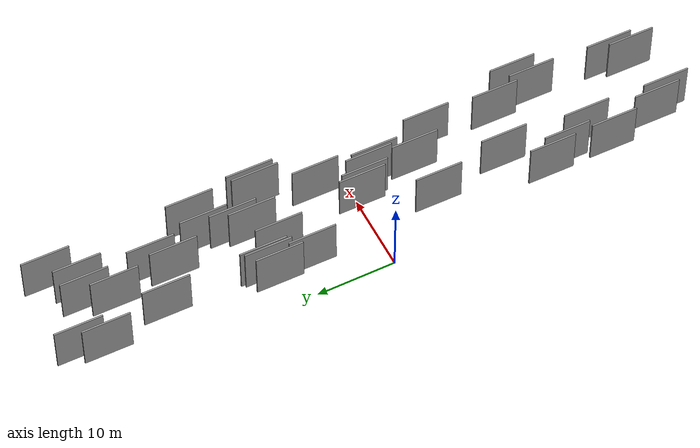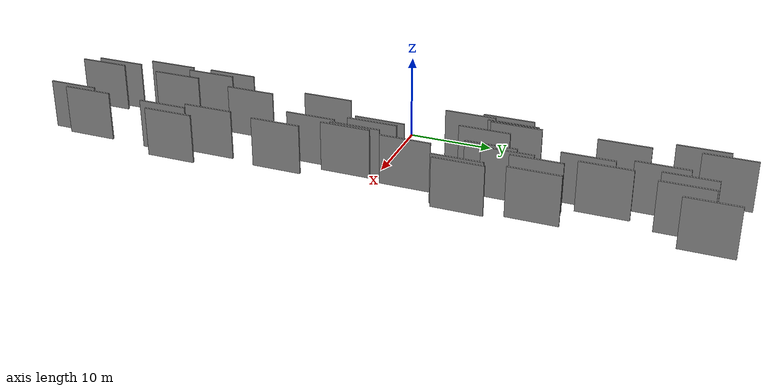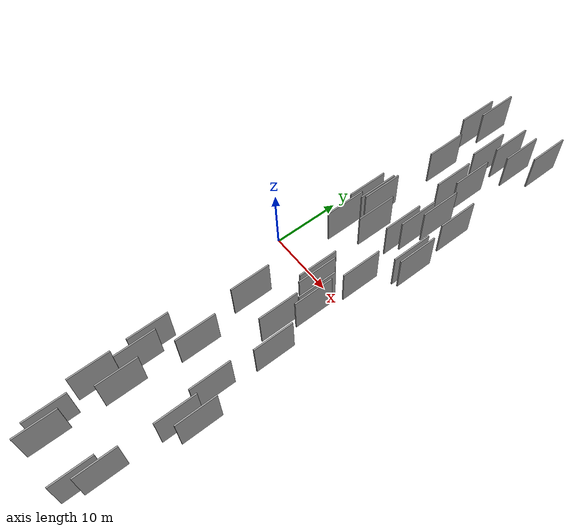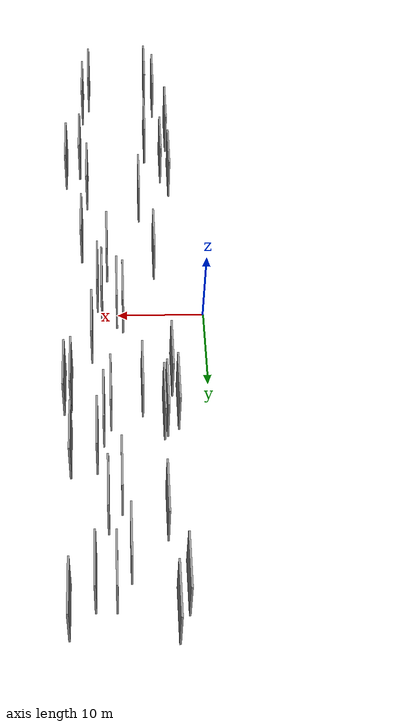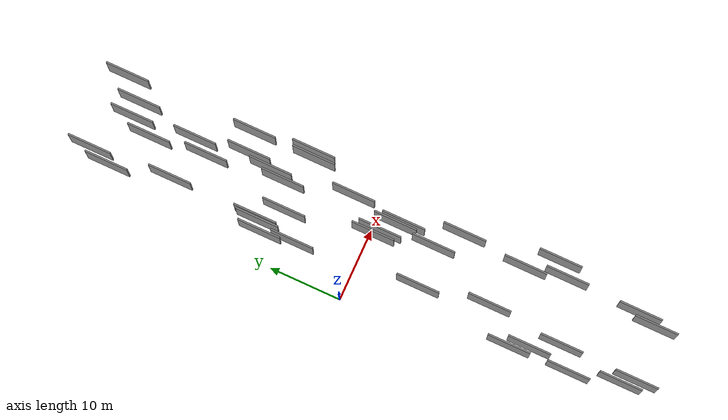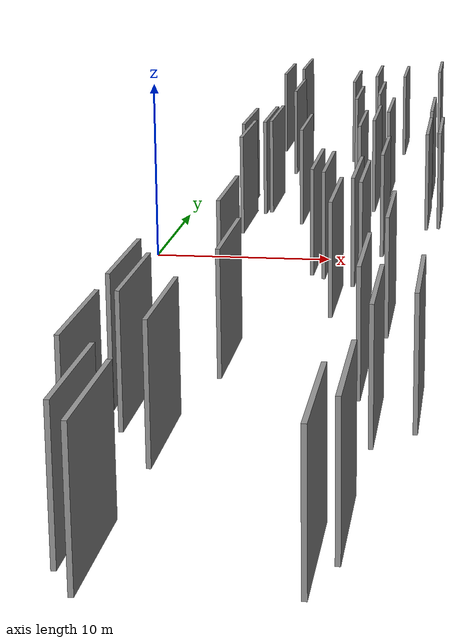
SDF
<sdf version="1.6">
 <world name="default">
  <scene>
   <sky><clouds><speed>12</speed></clouds></sky>
   <ambient>0.4 0.4 0.4 1</ambient>
   <background>0.7 0.7 0.7 1</background>
   <shadows>1</shadows>
  </scene>
  <gravity>0 0 -9.8066</gravity>
  <magnetic_field>6e-06 2.3e-05 -4.2e-05</magnetic_field>
  <physics default="0" name="default_physics" type="ode">
   <ode>
    <solver>
     <type>quick</type>
     <iters>10</iters>
     <sor>1.0</sor>
     <use_dynamic_moi_rescaling>0</use_dynamic_moi_rescaling>
    </solver>
    <constraints>
     <cfm>0</cfm>
     <erp>0.2</erp>
     <contact_max_correcting_vel>100</contact_max_correcting_vel>
     <contact_surface_layer>0.001</contact_surface_layer>
    </constraints>
   </ode>
   <max_step_size>0.004</max_step_size>
   <real_time_factor>1</real_time_factor>
   <real_time_update_rate>250</real_time_update_rate>
  </physics>
  <light name="sun" type="directional">
   <pose>0 0 10 0 0 0</pose>
   <diffuse>0.8 0.8 0.8 1</diffuse>
   <specular>0.2 0.2 0.2 1</specular>
   <attenuation>
    <range>1000</range>
    <constant>0.9</constant>
    <linear>0.01</linear>
    <quadratic>0.001</quadratic>
   </attenuation>
   <direction>-0.5 0.1 -0.9</direction>
  </light>
  <model name="grey_wall_1">
   <static>1</static>
   <pose>4.3245 -24.9638 0.0 0.000000 0.000000 1.570796</pose>
   <link name="link">
    <pose>0 0 3.00 0 0 0</pose>
    <collision name="collision"><geometry><box><size>6.00 0.2 6.00</size></box></geometry></collision>
    <visual name="visual">
     <cast_shadows>0</cast_shadows>
     <geometry><box><size>6.00 0.2 6.00</size></box></geometry>
     <material>
      <script>
       <uri>model://grey_wall/materials/scripts</uri>
       <uri>model://grey_wall/materials/textures</uri>
       <name>vrc/grey_wall</name>
      </script>
     </material>
    </visual>
   </link>
  </model>
  <model name="grey_wall_2">
   <static>1</static>
   <pose>12.3497 18.5937 0.0 0.000000 0.000000 1.570796</pose>
   <link name="link">
    <pose>0 0 3.00 0 0 0</pose>
    <collision name="collision"><geometry><box><size>6.00 0.2 6.00</size></box></geometry></collision>
    <visual name="visual">
     <cast_shadows>0</cast_shadows>
     <geometry><box><size>6.00 0.2 6.00</size></box></geometry>
     <material>
      <script>
       <uri>model://grey_wall/materials/scripts</uri>
       <uri>model://grey_wall/materials/textures</uri>
       <name>vrc/grey_wall</name>
      </script>
     </material>
    </visual>
   </link>
  </model>
  <model name="grey_wall_3">
   <static>1</static>
   <pose>11.8341 -2.5435 0.0 0.000000 0.000000 1.570796</pose>
   <link name="link">
    <pose>0 0 3.00 0 0 0</pose>
    <collision name="collision"><geometry><box><size>6.00 0.2 6.00</size></box></geometry></collision>
    <visual name="visual">
     <cast_shadows>0</cast_shadows>
     <geometry><box><size>6.00 0.2 6.00</size></box></geometry>
     <material>
      <script>
       <uri>model://grey_wall/materials/scripts</uri>
       <uri>model://grey_wall/materials/textures</uri>
       <name>vrc/grey_wall</name>
      </script>
     </material>
    </visual>
   </link>
  </model>
  <model name="grey_wall_4">
   <static>1</static>
   <pose>7.4011 11.3173 0.0 0.000000 0.000000 1.570796</pose>
   <link name="link">
    <pose>0 0 3.00 0 0 0</pose>
    <collision name="collision"><geometry><box><size>6.00 0.2 6.00</size></box></geometry></collision>
    <visual name="visual">
     <cast_shadows>0</cast_shadows>
     <geometry><box><size>6.00 0.2 6.00</size></box></geometry>
     <material>
      <script>
       <uri>model://grey_wall/materials/scripts</uri>
       <uri>model://grey_wall/materials/textures</uri>
       <name>vrc/grey_wall</name>
      </script>
     </material>
    </visual>
   </link>
  </model>
  <model name="grey_wall_5">
   <static>1</static>
   <pose>10.8684 13.0981 0.0 0.000000 0.000000 1.570796</pose>
   <link name="link">
    <pose>0 0 3.00 0 0 0</pose>
    <collision name="collision"><geometry><box><size>6.00 0.2 6.00</size></box></geometry></collision>
    <visual name="visual">
     <cast_shadows>0</cast_shadows>
     <geometry><box><size>6.00 0.2 6.00</size></box></geometry>
     <material>
      <script>
       <uri>model://grey_wall/materials/scripts</uri>
       <uri>model://grey_wall/materials/textures</uri>
       <name>vrc/grey_wall</name>
      </script>
     </material>
    </visual>
   </link>
  </model>
  <model name="grey_wall_6">
   <static>1</static>
   <pose>4.7483 13.9222 0.0 0.000000 0.000000 1.570796</pose>
   <link name="link">
    <pose>0 0 3.00 0 0 0</pose>
    <collision name="collision"><geometry><box><size>6.00 0.2 6.00</size></box></geometry></collision>
    <visual name="visual">
     <cast_shadows>0</cast_shadows>
     <geometry><box><size>6.00 0.2 6.00</size></box></geometry>
     <material>
      <script>
       <uri>model://grey_wall/materials/scripts</uri>
       <uri>model://grey_wall/materials/textures</uri>
       <name>vrc/grey_wall</name>
      </script>
     </material>
    </visual>
   </link>
  </model>
  <model name="grey_wall_7">
   <static>1</static>
   <pose>12.5244 34.4096 0.0 0.000000 0.000000 1.570796</pose>
   <link name="link">
    <pose>0 0 3.00 0 0 0</pose>
    <collision name="collision"><geometry><box><size>6.00 0.2 6.00</size></box></geometry></collision>
    <visual name="visual">
     <cast_shadows>0</cast_shadows>
     <geometry><box><size>6.00 0.2 6.00</size></box></geometry>
     <material>
      <script>
       <uri>model://grey_wall/materials/scripts</uri>
       <uri>model://grey_wall/materials/textures</uri>
       <name>vrc/grey_wall</name>
      </script>
     </material>
    </visual>
   </link>
  </model>
  <model name="grey_wall_8">
   <static>1</static>
   <pose>14.6035 -25.7520 0.0 0.000000 0.000000 1.570796</pose>
   <link name="link">
    <pose>0 0 3.00 0 0 0</pose>
    <collision name="collision"><geometry><box><size>6.00 0.2 6.00</size></box></geometry></collision>
    <visual name="visual">
     <cast_shadows>0</cast_shadows>
     <geometry><box><size>6.00 0.2 6.00</size></box></geometry>
     <material>
      <script>
       <uri>model://grey_wall/materials/scripts</uri>
       <uri>model://grey_wall/materials/textures</uri>
       <name>vrc/grey_wall</name>
      </script>
     </material>
    </visual>
   </link>
  </model>
  <model name="grey_wall_9">
   <static>1</static>
   <pose>16.2894 -24.0302 0.0 0.000000 0.000000 1.570796</pose>
   <link name="link">
    <pose>0 0 3.00 0 0 0</pose>
    <collision name="collision"><geometry><box><size>6.00 0.2 6.00</size></box></geometry></collision>
    <visual name="visual">
     <cast_shadows>0</cast_shadows>
     <geometry><box><size>6.00 0.2 6.00</size></box></geometry>
     <material>
      <script>
       <uri>model://grey_wall/materials/scripts</uri>
       <uri>model://grey_wall/materials/textures</uri>
       <name>vrc/grey_wall</name>
      </script>
     </material>
    </visual>
   </link>
  </model>
  <model name="grey_wall_10">
   <static>1</static>
   <pose>6.0475 -39.3182 0.0 0.000000 0.000000 1.570796</pose>
   <link name="link">
    <pose>0 0 3.00 0 0 0</pose>
    <collision name="collision"><geometry><box><size>6.00 0.2 6.00</size></box></geometry></collision>
    <visual name="visual">
     <cast_shadows>0</cast_shadows>
     <geometry><box><size>6.00 0.2 6.00</size></box></geometry>
     <material>
      <script>
       <uri>model://grey_wall/materials/scripts</uri>
       <uri>model://grey_wall/materials/textures</uri>
       <name>vrc/grey_wall</name>
      </script>
     </material>
    </visual>
   </link>
  </model>
  <model name="grey_wall_11">
   <static>1</static>
   <pose>7.2088 -18.0423 0.0 0.000000 0.000000 1.570796</pose>
   <link name="link">
    <pose>0 0 3.00 0 0 0</pose>
    <collision name="collision"><geometry><box><size>6.00 0.2 6.00</size></box></geometry></collision>
    <visual name="visual">
     <cast_shadows>0</cast_shadows>
     <geometry><box><size>6.00 0.2 6.00</size></box></geometry>
     <material>
      <script>
       <uri>model://grey_wall/materials/scripts</uri>
       <uri>model://grey_wall/materials/textures</uri>
       <name>vrc/grey_wall</name>
      </script>
     </material>
    </visual>
   </link>
  </model>
  <model name="grey_wall_12">
   <static>1</static>
   <pose>11.2103 -8.2758 0.0 0.000000 0.000000 1.570796</pose>
   <link name="link">
    <pose>0 0 3.00 0 0 0</pose>
    <collision name="collision"><geometry><box><size>6.00 0.2 6.00</size></box></geometry></collision>
    <visual name="visual">
     <cast_shadows>0</cast_shadows>
     <geometry><box><size>6.00 0.2 6.00</size></box></geometry>
     <material>
      <script>
       <uri>model://grey_wall/materials/scripts</uri>
       <uri>model://grey_wall/materials/textures</uri>
       <name>vrc/grey_wall</name>
      </script>
     </material>
    </visual>
   </link>
  </model>
  <model name="grey_wall_13">
   <static>1</static>
   <pose>5.6096 -8.5747 0.0 0.000000 0.000000 1.570796</pose>
   <link name="link">
    <pose>0 0 3.00 0 0 0</pose>
    <collision name="collision"><geometry><box><size>6.00 0.2 6.00</size></box></geometry></collision>
    <visual name="visual">
     <cast_shadows>0</cast_shadows>
     <geometry><box><size>6.00 0.2 6.00</size></box></geometry>
     <material>
      <script>
       <uri>model://grey_wall/materials/scripts</uri>
       <uri>model://grey_wall/materials/textures</uri>
       <name>vrc/grey_wall</name>
      </script>
     </material>
    </visual>
   </link>
  </model>
  <model name="grey_wall_14">
   <static>1</static>
   <pose>5.1643 26.5844 0.0 0.000000 0.000000 1.570796</pose>
   <link name="link">
    <pose>0 0 3.00 0 0 0</pose>
    <collision name="collision"><geometry><box><size>6.00 0.2 6.00</size></box></geometry></collision>
    <visual name="visual">
     <cast_shadows>0</cast_shadows>
     <geometry><box><size>6.00 0.2 6.00</size></box></geometry>
     <material>
      <script>
       <uri>model://grey_wall/materials/scripts</uri>
       <uri>model://grey_wall/materials/textures</uri>
       <name>vrc/grey_wall</name>
      </script>
     </material>
    </visual>
   </link>
  </model>
  <model name="grey_wall_15">
   <static>1</static>
   <pose>5.0965 14.3637 0.0 0.000000 0.000000 1.570796</pose>
   <link name="link">
    <pose>0 0 3.00 0 0 0</pose>
    <collision name="collision"><geometry><box><size>6.00 0.2 6.00</size></box></geometry></collision>
    <visual name="visual">
     <cast_shadows>0</cast_shadows>
     <geometry><box><size>6.00 0.2 6.00</size></box></geometry>
     <material>
      <script>
       <uri>model://grey_wall/materials/scripts</uri>
       <uri>model://grey_wall/materials/textures</uri>
       <name>vrc/grey_wall</name>
      </script>
     </material>
    </visual>
   </link>
  </model>
  <model name="grey_wall_16">
   <static>1</static>
   <pose>13.5013 -38.8088 0.0 0.000000 0.000000 1.570796</pose>
   <link name="link">
    <pose>0 0 3.00 0 0 0</pose>
    <collision name="collision"><geometry><box><size>6.00 0.2 6.00</size></box></geometry></collision>
    <visual name="visual">
     <cast_shadows>0</cast_shadows>
     <geometry><box><size>6.00 0.2 6.00</size></box></geometry>
     <material>
      <script>
       <uri>model://grey_wall/materials/scripts</uri>
       <uri>model://grey_wall/materials/textures</uri>
       <name>vrc/grey_wall</name>
      </script>
     </material>
    </visual>
   </link>
  </model>
  <model name="grey_wall_17">
   <static>1</static>
   <pose>4.9915 -37.5476 0.0 0.000000 0.000000 1.570796</pose>
   <link name="link">
    <pose>0 0 3.00 0 0 0</pose>
    <collision name="collision"><geometry><box><size>6.00 0.2 6.00</size></box></geometry></collision>
    <visual name="visual">
     <cast_shadows>0</cast_shadows>
     <geometry><box><size>6.00 0.2 6.00</size></box></geometry>
     <material>
      <script>
       <uri>model://grey_wall/materials/scripts</uri>
       <uri>model://grey_wall/materials/textures</uri>
       <name>vrc/grey_wall</name>
      </script>
     </material>
    </visual>
   </link>
  </model>
  <model name="grey_wall_18">
   <static>1</static>
   <pose>14.3217 -36.2283 0.0 0.000000 0.000000 1.570796</pose>
   <link name="link">
    <pose>0 0 3.00 0 0 0</pose>
    <collision name="collision"><geometry><box><size>6.00 0.2 6.00</size></box></geometry></collision>
    <visual name="visual">
     <cast_shadows>0</cast_shadows>
     <geometry><box><size>6.00 0.2 6.00</size></box></geometry>
     <material>
      <script>
       <uri>model://grey_wall/materials/scripts</uri>
       <uri>model://grey_wall/materials/textures</uri>
       <name>vrc/grey_wall</name>
      </script>
     </material>
    </visual>
   </link>
  </model>
  <model name="grey_wall_19">
   <static>1</static>
   <pose>12.3265 -3.5174 0.0 0.000000 0.000000 1.570796</pose>
   <link name="link">
    <pose>0 0 3.00 0 0 0</pose>
    <collision name="collision"><geometry><box><size>6.00 0.2 6.00</size></box></geometry></collision>
    <visual name="visual">
     <cast_shadows>0</cast_shadows>
     <geometry><box><size>6.00 0.2 6.00</size></box></geometry>
     <material>
      <script>
       <uri>model://grey_wall/materials/scripts</uri>
       <uri>model://grey_wall/materials/textures</uri>
       <name>vrc/grey_wall</name>
      </script>
     </material>
    </visual>
   </link>
  </model>
  <model name="grey_wall_20">
   <static>1</static>
   <pose>14.2419 -11.3249 0.0 0.000000 0.000000 1.570796</pose>
   <link name="link">
    <pose>0 0 3.00 0 0 0</pose>
    <collision name="collision"><geometry><box><size>6.00 0.2 6.00</size></box></geometry></collision>
    <visual name="visual">
     <cast_shadows>0</cast_shadows>
     <geometry><box><size>6.00 0.2 6.00</size></box></geometry>
     <material>
      <script>
       <uri>model://grey_wall/materials/scripts</uri>
       <uri>model://grey_wall/materials/textures</uri>
       <name>vrc/grey_wall</name>
      </script>
     </material>
    </visual>
   </link>
  </model>
  <model name="grey_wall_21">
   <static>1</static>
   <pose>3.3547 -22.5129 0.0 0.000000 0.000000 1.570796</pose>
   <link name="link">
    <pose>0 0 3.00 0 0 0</pose>
    <collision name="collision"><geometry><box><size>6.00 0.2 6.00</size></box></geometry></collision>
    <visual name="visual">
     <cast_shadows>0</cast_shadows>
     <geometry><box><size>6.00 0.2 6.00</size></box></geometry>
     <material>
      <script>
       <uri>model://grey_wall/materials/scripts</uri>
       <uri>model://grey_wall/materials/textures</uri>
       <name>vrc/grey_wall</name>
      </script>
     </material>
    </visual>
   </link>
  </model>
  <model name="grey_wall_22">
   <static>1</static>
   <pose>12.9528 3.9137 0.0 0.000000 0.000000 1.570796</pose>
   <link name="link">
    <pose>0 0 3.00 0 0 0</pose>
    <collision name="collision"><geometry><box><size>6.00 0.2 6.00</size></box></geometry></collision>
    <visual name="visual">
     <cast_shadows>0</cast_shadows>
     <geometry><box><size>6.00 0.2 6.00</size></box></geometry>
     <material>
      <script>
       <uri>model://grey_wall/materials/scripts</uri>
       <uri>model://grey_wall/materials/textures</uri>
       <name>vrc/grey_wall</name>
      </script>
     </material>
    </visual>
   </link>
  </model>
  <model name="grey_wall_23">
   <static>1</static>
   <pose>15.1757 19.1069 0.0 0.000000 0.000000 1.570796</pose>
   <link name="link">
    <pose>0 0 3.00 0 0 0</pose>
    <collision name="collision"><geometry><box><size>6.00 0.2 6.00</size></box></geometry></collision>
    <visual name="visual">
     <cast_shadows>0</cast_shadows>
     <geometry><box><size>6.00 0.2 6.00</size></box></geometry>
     <material>
      <script>
       <uri>model://grey_wall/materials/scripts</uri>
       <uri>model://grey_wall/materials/textures</uri>
       <name>vrc/grey_wall</name>
      </script>
     </material>
    </visual>
   </link>
  </model>
  <model name="grey_wall_24">
   <static>1</static>
   <pose>4.4452 37.7147 0.0 0.000000 0.000000 1.570796</pose>
   <link name="link">
    <pose>0 0 3.00 0 0 0</pose>
    <collision name="collision"><geometry><box><size>6.00 0.2 6.00</size></box></geometry></collision>
    <visual name="visual">
     <cast_shadows>0</cast_shadows>
     <geometry><box><size>6.00 0.2 6.00</size></box></geometry>
     <material>
      <script>
       <uri>model://grey_wall/materials/scripts</uri>
       <uri>model://grey_wall/materials/textures</uri>
       <name>vrc/grey_wall</name>
      </script>
     </material>
    </visual>
   </link>
  </model>
  <model name="grey_wall_25">
   <static>1</static>
   <pose>3.4861 -30.8448 0.0 0.000000 0.000000 1.570796</pose>
   <link name="link">
    <pose>0 0 3.00 0 0 0</pose>
    <collision name="collision"><geometry><box><size>6.00 0.2 6.00</size></box></geometry></collision>
    <visual name="visual">
     <cast_shadows>0</cast_shadows>
     <geometry><box><size>6.00 0.2 6.00</size></box></geometry>
     <material>
      <script>
       <uri>model://grey_wall/materials/scripts</uri>
       <uri>model://grey_wall/materials/textures</uri>
       <name>vrc/grey_wall</name>
      </script>
     </material>
    </visual>
   </link>
  </model>
  <model name="grey_wall_26">
   <static>1</static>
   <pose>4.0728 8.6260 0.0 0.000000 0.000000 1.570796</pose>
   <link name="link">
    <pose>0 0 3.00 0 0 0</pose>
    <collision name="collision"><geometry><box><size>6.00 0.2 6.00</size></box></geometry></collision>
    <visual name="visual">
     <cast_shadows>0</cast_shadows>
     <geometry><box><size>6.00 0.2 6.00</size></box></geometry>
     <material>
      <script>
       <uri>model://grey_wall/materials/scripts</uri>
       <uri>model://grey_wall/materials/textures</uri>
       <name>vrc/grey_wall</name>
      </script>
     </material>
    </visual>
   </link>
  </model>
  <model name="grey_wall_27">
   <static>1</static>
   <pose>6.2685 -28.6391 0.0 0.000000 0.000000 1.570796</pose>
   <link name="link">
    <pose>0 0 3.00 0 0 0</pose>
    <collision name="collision"><geometry><box><size>6.00 0.2 6.00</size></box></geometry></collision>
    <visual name="visual">
     <cast_shadows>0</cast_shadows>
     <geometry><box><size>6.00 0.2 6.00</size></box></geometry>
     <material>
      <script>
       <uri>model://grey_wall/materials/scripts</uri>
       <uri>model://grey_wall/materials/textures</uri>
       <name>vrc/grey_wall</name>
      </script>
     </material>
    </visual>
   </link>
  </model>
  <model name="grey_wall_28">
   <static>1</static>
   <pose>10.4224 34.4241 0.0 0.000000 0.000000 1.570796</pose>
   <link name="link">
    <pose>0 0 3.00 0 0 0</pose>
    <collision name="collision"><geometry><box><size>6.00 0.2 6.00</size></box></geometry></collision>
    <visual name="visual">
     <cast_shadows>0</cast_shadows>
     <geometry><box><size>6.00 0.2 6.00</size></box></geometry>
     <material>
      <script>
       <uri>model://grey_wall/materials/scripts</uri>
       <uri>model://grey_wall/materials/textures</uri>
       <name>vrc/grey_wall</name>
      </script>
     </material>
    </visual>
   </link>
  </model>
  <model name="grey_wall_29">
   <static>1</static>
   <pose>11.6366 15.1914 0.0 0.000000 0.000000 1.570796</pose>
   <link name="link">
    <pose>0 0 3.00 0 0 0</pose>
    <collision name="collision"><geometry><box><size>6.00 0.2 6.00</size></box></geometry></collision>
    <visual name="visual">
     <cast_shadows>0</cast_shadows>
     <geometry><box><size>6.00 0.2 6.00</size></box></geometry>
     <material>
      <script>
       <uri>model://grey_wall/materials/scripts</uri>
       <uri>model://grey_wall/materials/textures</uri>
       <name>vrc/grey_wall</name>
      </script>
     </material>
    </visual>
   </link>
  </model>
  <model name="grey_wall_30">
   <static>1</static>
   <pose>3.5231 13.0692 0.0 0.000000 0.000000 1.570796</pose>
   <link name="link">
    <pose>0 0 3.00 0 0 0</pose>
    <collision name="collision"><geometry><box><size>6.00 0.2 6.00</size></box></geometry></collision>
    <visual name="visual">
     <cast_shadows>0</cast_shadows>
     <geometry><box><size>6.00 0.2 6.00</size></box></geometry>
     <material>
      <script>
       <uri>model://grey_wall/materials/scripts</uri>
       <uri>model://grey_wall/materials/textures</uri>
       <name>vrc/grey_wall</name>
      </script>
     </material>
    </visual>
   </link>
  </model>
  <model name="grey_wall_31">
   <static>1</static>
   <pose>10.1016 -1.1360 0.0 0.000000 0.000000 1.570796</pose>
   <link name="link">
    <pose>0 0 3.00 0 0 0</pose>
    <collision name="collision"><geometry><box><size>6.00 0.2 6.00</size></box></geometry></collision>
    <visual name="visual">
     <cast_shadows>0</cast_shadows>
     <geometry><box><size>6.00 0.2 6.00</size></box></geometry>
     <material>
      <script>
       <uri>model://grey_wall/materials/scripts</uri>
       <uri>model://grey_wall/materials/textures</uri>
       <name>vrc/grey_wall</name>
      </script>
     </material>
    </visual>
   </link>
  </model>
  <model name="grey_wall_32">
   <static>1</static>
   <pose>15.0637 37.2412 0.0 0.000000 0.000000 1.570796</pose>
   <link name="link">
    <pose>0 0 3.00 0 0 0</pose>
    <collision name="collision"><geometry><box><size>6.00 0.2 6.00</size></box></geometry></collision>
    <visual name="visual">
     <cast_shadows>0</cast_shadows>
     <geometry><box><size>6.00 0.2 6.00</size></box></geometry>
     <material>
      <script>
       <uri>model://grey_wall/materials/scripts</uri>
       <uri>model://grey_wall/materials/textures</uri>
       <name>vrc/grey_wall</name>
      </script>
     </material>
    </visual>
   </link>
  </model>
  <model name="grey_wall_33">
   <static>1</static>
   <pose>13.6356 -20.2656 0.0 0.000000 0.000000 1.570796</pose>
   <link name="link">
    <pose>0 0 3.00 0 0 0</pose>
    <collision name="collision"><geometry><box><size>6.00 0.2 6.00</size></box></geometry></collision>
    <visual name="visual">
     <cast_shadows>0</cast_shadows>
     <geometry><box><size>6.00 0.2 6.00</size></box></geometry>
     <material>
      <script>
       <uri>model://grey_wall/materials/scripts</uri>
       <uri>model://grey_wall/materials/textures</uri>
       <name>vrc/grey_wall</name>
      </script>
     </material>
    </visual>
   </link>
  </model>
  <model name="grey_wall_34">
   <static>1</static>
   <pose>11.2067 25.7951 0.0 0.000000 0.000000 1.570796</pose>
   <link name="link">
    <pose>0 0 3.00 0 0 0</pose>
    <collision name="collision"><geometry><box><size>6.00 0.2 6.00</size></box></geometry></collision>
    <visual name="visual">
     <cast_shadows>0</cast_shadows>
     <geometry><box><size>6.00 0.2 6.00</size></box></geometry>
     <material>
      <script>
       <uri>model://grey_wall/materials/scripts</uri>
       <uri>model://grey_wall/materials/textures</uri>
       <name>vrc/grey_wall</name>
      </script>
     </material>
    </visual>
   </link>
  </model>
  <model name="grey_wall_35">
   <static>1</static>
   <pose>15.9757 11.0054 0.0 0.000000 0.000000 1.570796</pose>
   <link name="link">
    <pose>0 0 3.00 0 0 0</pose>
    <collision name="collision"><geometry><box><size>6.00 0.2 6.00</size></box></geometry></collision>
    <visual name="visual">
     <cast_shadows>0</cast_shadows>
     <geometry><box><size>6.00 0.2 6.00</size></box></geometry>
     <material>
      <script>
       <uri>model://grey_wall/materials/scripts</uri>
       <uri>model://grey_wall/materials/textures</uri>
       <name>vrc/grey_wall</name>
      </script>
     </material>
    </visual>
   </link>
  </model>
  <model name="grey_wall_36">
   <static>1</static>
   <pose>3.3744 34.7999 0.0 0.000000 0.000000 1.570796</pose>
   <link name="link">
    <pose>0 0 3.00 0 0 0</pose>
    <collision name="collision"><geometry><box><size>6.00 0.2 6.00</size></box></geometry></collision>
    <visual name="visual">
     <cast_shadows>0</cast_shadows>
     <geometry><box><size>6.00 0.2 6.00</size></box></geometry>
     <material>
      <script>
       <uri>model://grey_wall/materials/scripts</uri>
       <uri>model://grey_wall/materials/textures</uri>
       <name>vrc/grey_wall</name>
      </script>
     </material>
    </visual>
   </link>
  </model>
  <model name="grey_wall_37">
   <static>1</static>
   <pose>9.7825 23.5828 0.0 0.000000 0.000000 1.570796</pose>
   <link name="link">
    <pose>0 0 3.00 0 0 0</pose>
    <collision name="collision"><geometry><box><size>6.00 0.2 6.00</size></box></geometry></collision>
    <visual name="visual">
     <cast_shadows>0</cast_shadows>
     <geometry><box><size>6.00 0.2 6.00</size></box></geometry>
     <material>
      <script>
       <uri>model://grey_wall/materials/scripts</uri>
       <uri>model://grey_wall/materials/textures</uri>
       <name>vrc/grey_wall</name>
      </script>
     </material>
    </visual>
   </link>
  </model>
  <model name="grey_wall_38">
   <static>1</static>
   <pose>9.3957 -0.4633 0.0 0.000000 0.000000 1.570796</pose>
   <link name="link">
    <pose>0 0 3.00 0 0 0</pose>
    <collision name="collision"><geometry><box><size>6.00 0.2 6.00</size></box></geometry></collision>
    <visual name="visual">
     <cast_shadows>0</cast_shadows>
     <geometry><box><size>6.00 0.2 6.00</size></box></geometry>
     <material>
      <script>
       <uri>model://grey_wall/materials/scripts</uri>
       <uri>model://grey_wall/materials/textures</uri>
       <name>vrc/grey_wall</name>
      </script>
     </material>
    </visual>
   </link>
  </model>
  <model name="grey_wall_39">
   <static>1</static>
   <pose>8.9600 31.3418 0.0 0.000000 0.000000 1.570796</pose>
   <link name="link">
    <pose>0 0 3.00 0 0 0</pose>
    <collision name="collision"><geometry><box><size>6.00 0.2 6.00</size></box></geometry></collision>
    <visual name="visual">
     <cast_shadows>0</cast_shadows>
     <geometry><box><size>6.00 0.2 6.00</size></box></geometry>
     <material>
      <script>
       <uri>model://grey_wall/materials/scripts</uri>
       <uri>model://grey_wall/materials/textures</uri>
       <name>vrc/grey_wall</name>
      </script>
     </material>
    </visual>
   </link>
  </model>
  <model name="grey_wall_40">
   <static>1</static>
   <pose>15.2400 10.6520 0.0 0.000000 0.000000 1.570796</pose>
   <link name="link">
    <pose>0 0 3.00 0 0 0</pose>
    <collision name="collision"><geometry><box><size>6.00 0.2 6.00</size></box></geometry></collision>
    <visual name="visual">
     <cast_shadows>0</cast_shadows>
     <geometry><box><size>6.00 0.2 6.00</size></box></geometry>
     <material>
      <script>
       <uri>model://grey_wall/materials/scripts</uri>
       <uri>model://grey_wall/materials/textures</uri>
       <name>vrc/grey_wall</name>
      </script>
     </material>
    </visual>
   </link>
  </model>
 </world>
</sdf>
